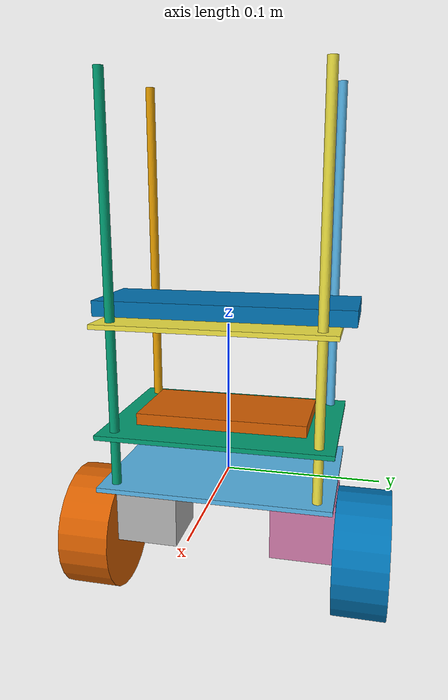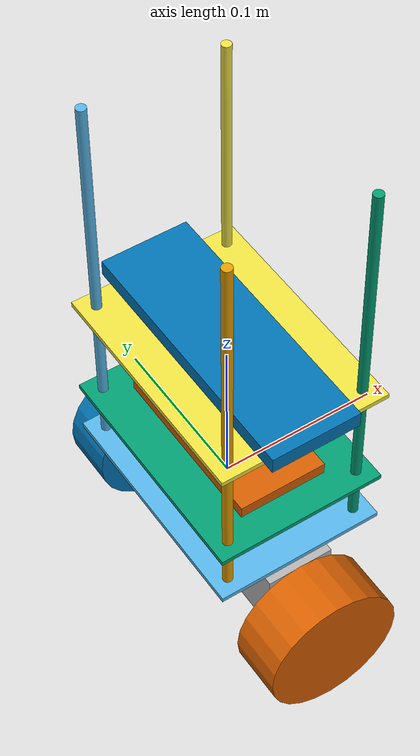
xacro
<?xml version="1.0" ?>
<robot name="sbr" xmlns:xacro="https://www.ros.org/wiki/xacro" >

     <xacro:macro name="cuboid_inertia" params="mass x y z">
        <inertia ixx="${1/12 * mass * ((x * x) + (y * y))}" ixy="0" ixz="0"
           iyy="${1/12 * mass * ((x * x) + (z * z))}" iyz="0"
           izz="${1/12 * mass * ((z * z) + (y * y))}" />
     </xacro:macro>

     <xacro:macro name="cylinder_inertia" params="mass radius height">
        <inertia ixx="${1/12 * mass * (3 * radius * radius + height*height)}" ixy="0" ixz="0"
           iyy="${1/12 * mass * (3 * radius * radius + height*height)}" iyz="0"
           izz="${1/2 * mass * radius * radius}"/>
     </xacro:macro>

     <xacro:property name = "plate_x" value="0.105"/>
     <xacro:property name="plate_y" value = "0.148"/>
     <xacro:property name="plate_z" value="0.003"/>
     <xacro:property name="plate_mass" value="0.055"/>

     <xacro:property name="first_plate_spacing" value="0.035"/>
     <xacro:property name="second_plate_spacing" value="0.07"/>

     <xacro:property name="motor_x" value="0.042"/>
     <xacro:property name="motor_y" value="0.042"/>
     <xacro:property name="motor_z" value="0.042"/>
     <xacro:property name="motor_mass" value="0.311"/>
     <xacro:property name="gap_between_motor_and_plate" value="0.031"/>

     <xacro:property name="wheel_mass" value="0.053"/>
     <xacro:property name="wheel_radius" value="0.0425"/>
     <xacro:property name="wheel_height" value="0.035"/>

     <xacro:property name="rod_mass" value="0.042"/>
     <xacro:property name="rod_height" value="0.25"/>
     <xacro:property name="rod_radius" value="0.003"/>
     <xacro:property name="rod_distance_from_edge" value="0.01"/>

     <xacro:property name="arduino_x" value="0.055"/>
     <xacro:property name="arduino_y" value="0.11"/>
     <xacro:property name="arduino_z" value="0.015"/>
     <xacro:property name="arduino_mass" value="0.053"/>

     <xacro:property name="breadboard_x" value="0.055"/>
     <xacro:property name="breadboard_y" value="0.165"/>
     <xacro:property name="breadboard_z" value="0.01"/>
     <xacro:property name="breadboard_mass" value="0.076"/>

    <xacro:macro name = "cuboid" params="name mass x y z">
        <link name="${name}">
            <inertial>
                <origin rpy="0 0 0" xyz="0 0 0"/>
                <mass value="${mass}"/>
                <xacro:cuboid_inertia mass="${mass}" z="${z}" x="${x}" y="${y}" />
            </inertial>
            <collision>
                <geometry>
                    <box size = "${x} ${y} ${z}" />
                </geometry>
            </collision>
            <visual>
                <geometry>
                    <box size = "${x} ${y} ${z}" />
                </geometry>
            </visual>
        </link>
    </xacro:macro>

    <xacro:macro name="rod" params="prefix">
        <link name="${prefix}_rod">
            <inertial>
                <mass value="${rod_mass}"/>
                <origin rpy="0 0 0" xyz="0 0 0"/>
                <xacro:cylinder_inertia mass="${rod_mass}" radius="${rod_radius}" height="${rod_height}"/>
            </inertial>

            <collision>
                <origin rpy="0 0 0" xyz="0 0 0" />
                <geometry>
                    <cylinder length="${rod_height}" radius="${rod_radius}"/>
                </geometry>
            </collision>

            <visual>
                <origin rpy="0 0 0" xyz="0 0 0"/>
                <geometry>
                    <cylinder length="${rod_height}" radius="${rod_radius}"/>
                </geometry>
            </visual>
        </link>
    </xacro:macro>

    <xacro:macro name="wheel" params="prefix">
        <link name="${prefix}_wheel">
            <inertial>
                <mass value="${wheel_mass}"/>
                <origin rpy="0 ${pi/2} ${pi/2}" xyz="0 0 0"/>
                <xacro:cylinder_inertia mass="${wheel_mass}" radius="${wheel_radius}" height="${wheel_height}"/>
            </inertial>

            <collision>
                <origin rpy="0 ${pi/2} ${pi/2}" xyz="0 0 0" />
                <geometry>
                    <cylinder length="${wheel_height}" radius="${wheel_radius}"/>
                </geometry>

            </collision>

            <visual>
                <origin rpy="0 ${pi/2} ${pi/2}" xyz="0 0 0"/>
                <geometry>
                    <cylinder length="${wheel_height}" radius="${wheel_radius}"/>
                </geometry>
            </visual>

        </link>
    </xacro:macro>

    <xacro:macro name="fixed_chassis_joint" params="x_offset y_offset z_offset child_link">
        <joint name="${child_link}_chassis_joint" type="fixed">
            <origin rpy="0 0 0" xyz="${x_offset} ${y_offset} ${z_offset}"/>
            <child link="${child_link}"/>
            <parent link="chassis"/>

        </joint>
    </xacro:macro>

    <xacro:macro name="wheel_joint" params="x_offset y_offset z_offset child_link axis_y">
        <joint name="${child_link}_joint" type="continuous">
            <origin rpy="0 0 0" xyz="${x_offset} ${y_offset} ${z_offset}"/>
            <child link="${child_link}" />
            <parent link="chassis"/>
            <axis rpy="0 0 0" xyz="0 ${axis_y} 0"/>
            <limit effort="10000" velocity="1000"/>
            <joint_properties damping="1.0" friction="1.0" />
        </joint>
    </xacro:macro>

    <link name="chassis">

    </link>

    <xacro:cuboid name="bottom_plate" x="${plate_x}" y="${plate_y}" z="${plate_z}" mass="${plate_mass}"/>
    <xacro:cuboid name="middle_plate" x="${plate_x}" y="${plate_y}" z="${plate_z}" mass="${plate_mass}"/>
    <xacro:cuboid name="top_plate" x="${plate_x}" y="${plate_y}" z="${plate_z}" mass="${plate_mass}"/>

    <xacro:fixed_chassis_joint child_link="bottom_plate" x_offset="0" y_offset="0" z_offset="0"/>
    <xacro:fixed_chassis_joint child_link="middle_plate" x_offset="0" y_offset="0" z_offset="${first_plate_spacing}"/>
    <xacro:fixed_chassis_joint child_link="top_plate" x_offset="0" y_offset="0" z_offset="${second_plate_spacing + first_plate_spacing}"/>

    <xacro:wheel prefix="right"/>
    <xacro:wheel prefix="left"/>

    <xacro:wheel_joint child_link="right_wheel" x_offset="0" y_offset="${(plate_y+ wheel_height)/2}" z_offset="${-(gap_between_motor_and_plate + motor_z/2)}" axis_y="-1"/>
    <xacro:wheel_joint child_link="left_wheel" x_offset="0" y_offset="${-(plate_y+ wheel_height)/2}" z_offset="${-(gap_between_motor_and_plate + motor_z/2)}" axis_y="1"/>

    <xacro:cuboid name="right_motor" x="${motor_x}" y="${motor_y}" z="${motor_z}" mass="${motor_mass}"/>
    <xacro:cuboid name="left_motor" x="${motor_x}" y="${motor_y}" z="${motor_z}" mass="${motor_mass}"/>

    <xacro:fixed_chassis_joint child_link="right_motor" x_offset="0" z_offset="${-gap_between_motor_and_plate}" y_offset="${(plate_y - motor_y)/2}"/>
    <xacro:fixed_chassis_joint child_link="left_motor" x_offset="0" z_offset="${-gap_between_motor_and_plate}" y_offset="${-(plate_y - motor_y)/2}"/>

    <xacro:rod prefix="back_left"/>
    <xacro:rod prefix="back_right"/>
    <xacro:rod prefix="front_left"/>
    <xacro:rod prefix="front_right"/>

    <xacro:fixed_chassis_joint child_link="back_left_rod" x_offset="${-(0.5 * plate_x - rod_distance_from_edge)}" y_offset="${-(0.5 * plate_y - rod_distance_from_edge)}" z_offset="${1/2 * rod_height}"/>
    <xacro:fixed_chassis_joint child_link="back_right_rod" x_offset="${-(0.5 * plate_x - rod_distance_from_edge)}" y_offset="${(0.5 * plate_y - rod_distance_from_edge)}" z_offset="${1/2 * rod_height}"/>
    <xacro:fixed_chassis_joint child_link="front_left_rod" x_offset="${(0.5 * plate_x - rod_distance_from_edge)}" y_offset="${-(0.5 * plate_y - rod_distance_from_edge)}" z_offset="${1/2 * rod_height}"/>
    <xacro:fixed_chassis_joint child_link="front_right_rod" x_offset="${(0.5 * plate_x - rod_distance_from_edge)}" y_offset="${(0.5 * plate_y - rod_distance_from_edge)}" z_offset="${1/2 * rod_height}"/>

    <xacro:cuboid name="breadboard" x="${breadboard_x}" y="${breadboard_y}" z="${breadboard_z}" mass="${breadboard_mass}"/>
    <xacro:fixed_chassis_joint child_link="breadboard" x_offset="0" y_offset="0" z_offset="${first_plate_spacing + second_plate_spacing + 0.5 * plate_z + 0.5 * breadboard_z}"/>

    <xacro:cuboid name="arduino" x="${arduino_x}" y="${arduino_y}" z="${arduino_z}" mass="${arduino_mass}"/>
    <xacro:fixed_chassis_joint child_link="arduino" x_offset="0" y_offset="0" z_offset="${0.5 * plate_z + first_plate_spacing}"/>

    <gazebo>
        <plugin name="differential_drive_controller" filename="libgazebo_ros_diff_drive.so">
            <update_rate>20</update_rate>
            <left_joint>left_wheel_joint</left_joint>
            <right_joint>right_wheel_joint</right_joint>
            <wheel_separation>0.105</wheel_separation>
            <wheel_diameter>0.085</wheel_diameter>
            <wheel_torque>0.1</wheel_torque>
            <command_topic>cmd_vel</command_topic>
            <odometry_topic>odom</odometry_topic>
            <odometry_frame>odom</odometry_frame>
            <robot_base_frame>chassis</robot_base_frame>
        </plugin>
    </gazebo>
    <gazebo reference="breadboard"><!-- Change this to the imu cuboid-->
        <sensor name="my_imu" type="imu">
            <always_on>true</always_on>
            <!-- Publish at 30 hz -->
            <update_rate>30</update_rate>
            <plugin name="my_imu_plugin" filename="libgazebo_ros_imu_sensor.so">
            <ros>
                <!-- Will publish to /imu/data -->
                <namespace>/imu</namespace>
                <remapping>~/out:=data</remapping>
            </ros>
            <frame_name>breadboard</frame_name>
            <initial_orientation_as_reference>false</initial_orientation_as_reference>
            </plugin>
        </sensor>
    </gazebo>

</robot>
